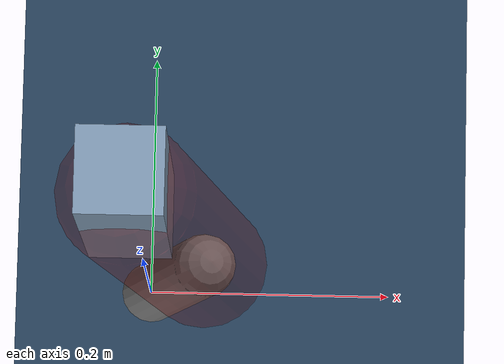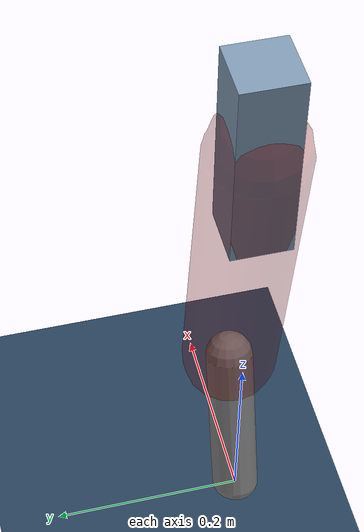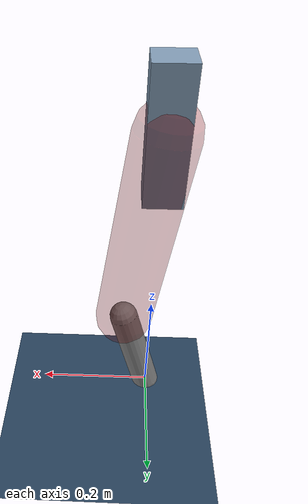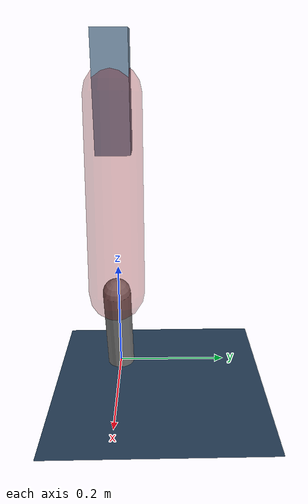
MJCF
<mujoco model="Hopper2D">
	<compiler inertiafromgeom="true" angle="radian" />
	<option timestep="0.001" integrator="implicit" cone="elliptic" solver="Newton" tolerance="1e-10" />

	<default>
		<geom contype="1" conaffinity="1" condim="3" friction="2 0.005 0.0001" solref="0.005 1" />
		<joint limited="true" damping="0.1" />
	</default>

	<asset>
		<texture name="skybox" type="skybox" builtin="gradient" rgb1=".4 .6 .8" rgb2="0 0 0" width="800" height="800" />
		<texture name="grid" type="2d" builtin="checker" rgb1=".1 .2 .3" rgb2=".2 .3 .4" width="300" height="300" mark="edge" markrgb=".2 .3 .4" />
		<material name="ground" texture="grid" texrepeat="1 1" texuniform="true" reflectance="0.1" />
		<material name="leg" rgba="0.5 0.6 0.7 1" />
	</asset>

	<worldbody>

		<geom name="floor" type="plane" size="5 5 0.25" material="ground" />

		<light directional="false" diffuse="0.8 0.8 0.8" specular="0.3 0.3 0.3" pos="0 0 2" dir="0 0 -1" />
		<light mode="targetbodycom" target="base" directional="false" diffuse="0.8 0.8 0.8" specular="0.3 0.3 0.3" pos="0 0 2" dir="0 0 -1" />

		<camera name="fixed" pos="0 -2 1" xyaxes="1 0 0 0 0 1" />
		<camera name="tracking" mode="trackcom" pos="0 -3 1" />

		<body name="root" pos="0 0 0.5140334192600872">
			<joint name="slide_x" type="slide" axis="1 0 0" range="-100 100" />
			<joint name="slide_z" type="slide" axis="0 0 1" range="0 10" />

			<body name="base" pos="0 0 0">
				<geom name="torso" type="box" size="0.03 0.03 0.1" mass="2.0060000000000002" material="leg" />

				<body name="link1" pos="0 0 0" euler="0 1.4310464213555782 0">
					<joint type="hinge" axis="0 -1 0" pos="0 0 0" name="hinge1" limited="true" range="-3.14 3.14" stiffness="0" damping="0.1" />
					<geom name="thigh" type="capsule" fromto="0 0 0 0.3457599260821082 0 0" size="0.05" rgba="0.5 0 0 0.3" mass="1.114727793029903" />

					<body name="link2" pos="0.3457599260821082 0 0" euler="0 0.4133115706281307 0">
						<joint type="hinge" axis="0 -1 0" pos="0 0 0" name="hinge2" limited="true" range="-3.14 3.14" stiffness="0" damping="0.1" />
						<geom name="shank" type="capsule" fromto="0 0 0 0.17827349317797897 0 0" size="0.025" mass="0.3824187945423832" />

					</body>
				</body>
			</body>
		</body>
	</worldbody>

	<actuator>
		<motor name="torque1" joint="hinge1" ctrlrange="-79.17510324398809 79.17510324398809" ctrllimited="true" gear="1" />
		<motor name="torque2" joint="hinge2" ctrlrange="-40.29613109019631 40.29613109019631" ctrllimited="true" gear="1" />
	</actuator>
</mujoco>
